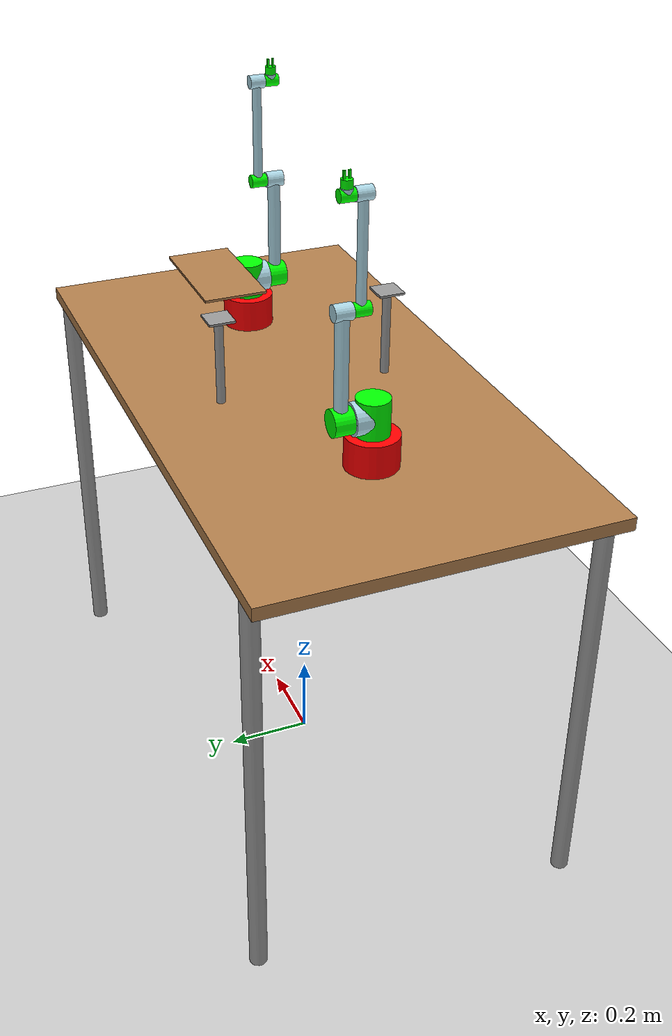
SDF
<?xml version="1.0" ?>
<sdf version="1.8">
  <world name="full_env">

    <!-- LIGHT -->

    <light type="directional" name="sun">
        <cast_shadows>true</cast_shadows>
        <pose>0 0 10 0 0 0</pose>
        <diffuse>0.8 0.8 0.8 1</diffuse>
        <specular>0.2 0.2 0.2 1</specular>
        <attenuation>
            <range>1000</range>
            <constant>0.9</constant>
            <linear>0.01</linear>
            <quadratic>0.001</quadratic>
        </attenuation>
        <direction>-0.5 0.1 -0.9</direction>
    </light>

                            <!--      MODELS      -->

                        <!--      Ground Plane      -->

    <!-- Ground Plane -->
    <model name="ground_plane">
      <static>true</static>
      <link name="link">
        <collision name="collision">
          <geometry>
            <plane>
              <normal>0 0 1</normal>
              <size>10 10</size>
            </plane>
          </geometry>
        </collision>
        <visual name="visual">
          <geometry>
            <plane>
              <normal>0 0 1</normal>
              <size>10 10</size>
            </plane>
          </geometry>

          <!-- COLOR!-->
          <material>
            <ambient>0.8 0.8 0.8 1</ambient>
            <diffuse>0.8 0.8 0.8 1</diffuse>
            <specular>0.5 0.5 0.5 1</specular>
          </material>
        </visual>
      </link>
    </model>

                                <!-- OBJECT MODEL -->

    <model name="wood_object">
        <link name="wood">
            <pose>0 0.2 1.3200 0 0 0</pose>
            <collision name="surface">
                <geometry>
                    <box>
                        <size>0.25 0.1333 0.0050</size>
                    </box>
                </geometry>
                <surface>
                    <friction>
                        <ode>
                            <mu>0.6</mu>
                            <mu2>0.6</mu2>
                        </ode>
                    </friction>
                </surface>
            </collision>
            <visual name="visual1">
                <geometry>
                    <box>
                        <size>0.25 0.1333 0.005</size>
                    </box>
                </geometry>
                <material>
                    <diffuse>1.0 1.0 1.0</diffuse>
                    <script>
                        <uri>file://media/materials/scripts/gazebo.material</uri>
                        <name>Gazebo/Wood</name>
                    </script>
                    <!-- PBR for Ignition, material scripts for gazebo classic-->
                    <pbr>
                        <metal>
                            <albedo_map>https://fuel.gazebosim.org/1.0/openrobotics/models/table/4/files/Table_Diffuse.jpg</albedo_map>
                        </metal>
                    </pbr>
                </material>
            </visual>
            <inertial>
                <mass>1.0</mass>
                <inertia>
                    <ixx>0.00000147616</ixx>
                    <ixy>0</ixy>
                    <ixz>0</ixz>
                    <iyy>0.00000671574</iyy>
                    <iyz>0</iyz>
                    <izz>0.00000521083</izz>
                </inertia>
            </inertial>
        </link>
    </model>

                                <!-- Table and Supports Model -->

    <model name="Table">
        <static>true</static>
        <link name="table_link">
          <collision name="surface">
              <pose>0 0 1.0 0 0 0</pose>
              <geometry>
                  <box>
                      <size>1.5 0.8 0.03</size>
                  </box>
              </geometry>
              <surface>
                  <friction>
                      <ode>
                          <mu>0.6</mu>
                          <mu2>0.6</mu2>
                      </ode>
                  </friction>
              </surface>
          </collision>
          <visual name="visual1">
              <pose>0 0 1.0 0 0 0</pose>
              <geometry>
                  <box>
                      <size>1.5 0.8 0.03</size>
                  </box>
              </geometry>
              <material>
                  <diffuse>1.0 1.0 1.0</diffuse>
                  <script>
                      <uri>file://media/materials/scripts/gazebo.material</uri>
                      <name>Gazebo/Wood</name>
                  </script>
                  <!-- PBR for Ignition, material scripts for gazebo classic-->
                  <pbr>
                      <metal>
                          <albedo_map>https://fuel.gazebosim.org/1.0/openrobotics/models/table/4/files/Table_Diffuse.jpg</albedo_map>
                      </metal>
                  </pbr>
              </material>
          </visual>
          <collision name="front_left_leg">
              <pose>0.68 0.38 0.5 0 0 0</pose>
              <geometry>
                  <cylinder>
                      <radius>0.02</radius>
                      <length>1.0</length>
                  </cylinder>
              </geometry>
          </collision>
          <visual name="front_left_leg">
              <pose>0.68 0.38 0.5 0 0 0</pose>
              <geometry>
                  <cylinder>
                      <radius>0.02</radius>
                      <length>1.0</length>
                  </cylinder>
              </geometry>
              <material>
                  <diffuse>0.5 0.5 0.5</diffuse>
                  <script>
                      <uri>file://media/materials/scripts/gazebo.material</uri>
                      <name>Gazebo/Grey</name>
                  </script>
              </material>
          </visual>
          <collision name="front_right_leg">
              <pose>0.68 -0.38 0.5 0 0 0</pose>
              <geometry>
                  <cylinder>
                      <radius>0.02</radius>
                      <length>1.0</length>
                  </cylinder>
              </geometry>
          </collision>
          <visual name="front_right_leg">
              <pose>0.68 -0.38 0.5 0 0 0</pose>
              <geometry>
                  <cylinder>
                      <radius>0.02</radius>
                      <length>1.0</length>
                  </cylinder>
              </geometry>
              <material>
                  <diffuse>0.5 0.5 0.5</diffuse>
                  <script>
                      <uri>file://media/materials/scripts/gazebo.material</uri>
                      <name>Gazebo/Grey</name>
                  </script>
              </material>
          </visual>
          <collision name="back_right_leg">
              <pose>-0.68 -0.38 0.5 0 0 0</pose>
              <geometry>
                  <cylinder>
                      <radius>0.02</radius>
                      <length>1.0</length>
                  </cylinder>
              </geometry>
          </collision>
          <visual name="back_right_leg">
              <pose>-0.68 -0.38 0.5 0 0 0</pose>
              <geometry>
                  <cylinder>
                      <radius>0.02</radius>
                      <length>1.0</length>
                  </cylinder>
              </geometry>
              <material>
                  <diffuse>0.5 0.5 0.5</diffuse>
                  <script>
                      <uri>file://media/materials/scripts/gazebo.material</uri>
                      <name>Gazebo/Grey</name>
                  </script>
              </material>
          </visual>
          <collision name="back_left_leg">
              <pose>-0.68 0.38 0.5 0 0 0</pose>
              <geometry>
                  <cylinder>
                      <radius>0.02</radius>
                      <length>1.0</length>
                  </cylinder>
              </geometry>
          </collision>
          <visual name="back_left_leg">
              <pose>-0.68 0.38 0.5 0 0 0</pose>
              <geometry>
                  <cylinder>
                      <radius>0.02</radius>
                      <length>1.0</length>
                  </cylinder>
              </geometry>
              <material>
                  <diffuse>0.5 0.5 0.5</diffuse>
                  <script>
                      <uri>file://media/materials/scripts/gazebo.material</uri>
                      <name>Gazebo/Grey</name>
                  </script>
              </material>
          </visual>
        </link>

                            <!-- SUPPORT LINKS -->

                            <!-- START SUPPORT -->

        <link name="body_support_start">
            <pose relative_to="table_link">0 0.2 1.1150 0 0 0</pose>

            <collision name="body_collision">
                <geometry>
                    <cylinder>
                        <radius>0.01</radius>
                        <length>0.2</length>
                    </cylinder>
                </geometry>
            </collision>
            <visual name="body_visual">
                <geometry>
                    <cylinder>
                        <radius>0.01</radius>
                        <length>0.2</length>
                    </cylinder>
                </geometry>
                <material>
                    <diffuse>0.5 0.5 0.5</diffuse>
                    <script>
                        <uri>file://media/materials/scripts/gazebo.material</uri>
                        <name>Gazebo/Grey</name>
                    </script>
                </material>
            </visual>
        </link>

        <link name="platform_support_start">
            <pose relative_to="body_support_start">0 0 0.1025 0 0 0</pose>

            <collision name="platform_collision">
                <geometry>
                    <box>
                        <size>0.06 0.06 0.005</size>
                    </box>
                </geometry>
            </collision>
            <visual name="platform_visual">
                <geometry>
                    <box>
                        <size>0.06 0.06 0.005</size>
                    </box>
                </geometry>
                <material>
                    <diffuse>0.5 0.5 0.5</diffuse>
                    <script>
                        <uri>file://media/materials/scripts/gazebo.material</uri>
                        <name>Gazebo/Grey</name>
                    </script>
                </material>
            </visual>
        </link>

                            <!-- GOAL SUPPORT -->

        <link name="body_support_goal">
            <pose relative_to="table_link">0 -0.2 1.115 0 0 0</pose>

            <collision name="body_collision">
                <geometry>
                    <cylinder>
                        <radius>0.01</radius>
                        <length>0.2</length>
                    </cylinder>
                </geometry>
            </collision>
            <visual name="body_visual">
                <geometry>
                    <cylinder>
                        <radius>0.01</radius>
                        <length>0.2</length>
                    </cylinder>
                </geometry>
                <material>
                    <diffuse>0.5 0.5 0.5</diffuse>
                    <script>
                        <uri>file://media/materials/scripts/gazebo.material</uri>
                        <name>Gazebo/Grey</name>
                    </script>
                </material>
            </visual>
        </link>

        <link name="platform_support_goal">
            <pose relative_to="body_support_goal">0 0 0.1025 0 0 0</pose>

            <collision name="platform_collision">
                <geometry>
                    <box>
                        <size>0.06 0.06 0.005</size>
                    </box>
                </geometry>
            </collision>
            <visual name="platform_visual">
                <geometry>
                    <box>
                        <size>0.06 0.06 0.005</size>
                    </box>
                </geometry>
                <material>
                    <diffuse>0.5 0.5 0.5</diffuse>
                    <script>
                        <uri>file://media/materials/scripts/gazebo.material</uri>
                        <name>Gazebo/Grey</name>
                    </script>
                </material>
            </visual>
        </link>

                                <!-- START: weld support to table  -->

        <joint name="support_table_start" type="fixed">
            <parent>table_link</parent>
            <child>body_support_start</child>
            <pose>0 0.2 1.115 0 0 0</pose>
        </joint>

                                <!-- START: weld platform to support body -->

        <joint name="platform_body_start" type="fixed">
            <parent>body_support_start</parent>
            <child>platform_support_start</child>
            <pose>0 0 0.1025 0 0 0</pose>
        </joint>

                                <!-- GOAL: weld support to table  -->

        <joint name="support_table_goal" type="fixed">
            <parent>table_link</parent>
            <child>body_support_goal</child>
            <pose>0 -0.2 1.115 0 0 0</pose>
        </joint>

                                <!-- GOAL: weld platform to support body -->

        <joint name="platform_body_goal" type="fixed">
            <parent>body_support_goal</parent>
            <child>platform_support_goal</child>
            <pose>0 0 0.1025 0 0 0</pose>
        </joint>

    </model>

                            <!-- ARM MODEL 1 -->

    <model name="arm_1">

      <plugin
        filename="libignition-gazebo-joint-controller-system.so"
        name="ignition::gazebo::systems::JointController">
        <joint_name>joint0_1</joint_name>
        <topic>/arm/joint0_1/pos_eff</topic>
      </plugin>

      <plugin
        filename="libignition-gazebo-joint-controller-system.so"
        name="ignition::gazebo::systems::JointController">
        <joint_name>joint1_1</joint_name>
        <topic>/arm/joint1_1/pos_eff</topic>
      </plugin>

      <plugin
        filename="libignition-gazebo-joint-controller-system.so"
        name="ignition::gazebo::systems::JointController">
        <joint_name>joint2_1</joint_name>
        <topic>/arm/joint2_1/pos_eff</topic>
      </plugin>

      <plugin
        filename="libignition-gazebo-joint-controller-system.so"
        name="ignition::gazebo::systems::JointController">
        <joint_name>joint3_1</joint_name>
        <topic>/arm/joint3_1/pos_eff</topic>
      </plugin>

      <plugin
        filename="libignition-gazebo-joint-controller-system.so"
        name="ignition::gazebo::systems::JointController">
        <joint_name>joint4_1</joint_name>
        <topic>/arm/joint4_1/pos_eff</topic>
      </plugin>

      <plugin
        filename="libignition-gazebo-joint-controller-system.so"
        name="ignition::gazebo::systems::JointController">
        <joint_name>right_finger_1_joint</joint_name>
        <topic>/arm/right_finger_1_joint/pos_eff</topic>
      </plugin>

      <plugin
        filename="libignition-gazebo-joint-controller-system.so"
        name="ignition::gazebo::systems::JointController">
        <joint_name>left_finger_1_joint</joint_name>
        <topic>/arm/left_finger_1_joint/pos_eff</topic>
      </plugin>

      <plugin
        filename="libignition-gazebo-joint-state-publisher-system.so"
        name="ignition::gazebo::systems::JointStatePublisher">
      </plugin>

                                <!-- Arm Links -->

                                <!-- BASE LINK -->

      <!-- Base Link -->
      <link name="base_link_1">

        <pose>-0.375 0 1.0525 0 0 1.57079632679</pose>

        <collision name="base_collision_1">
          <geometry>
            <cylinder>
              <radius>0.06</radius> <!-- 12 cm diameter -->
              <length>0.075</length> <!-- 7.5 cm length -->
            </cylinder>
          </geometry>
        </collision>

        <visual name="base_visual_1">
          <geometry>
            <cylinder>
              <radius>0.06</radius>
              <length>0.075</length>
            </cylinder>
          </geometry>

          <!-- COLOR!-->
          <material>
            <ambient>1.0 0.0 0.0 1</ambient>
            <diffuse>1.0 0.0 0.0 1</diffuse>
            <specular>1.0 0.0 0.0 1</specular>
          </material>
        </visual>

        <inertial>
          <mass>100</mass>
          <inertia>
            <ixx>0.100</ixx>
            <ixy>0</ixy>
            <ixz>0</ixz>
            <iyy>0.100</iyy>
            <iyz>0</iyz>
            <izz>0.08</izz>
          </inertia>
        </inertial>
      </link>

                            <!-- Motor 0 link -->

      <link name="motor0_1">

        <pose relative_to="base_link_1">0 0 0.07875 0 0 0</pose>

        <!-- COLLISION -->
        <collision name="motor0_1_collision">
            <geometry>
                <cylinder>
                    <radius>0.0375</radius>
                    <length>0.0825</length>
                </cylinder>
            </geometry>
        </collision>

        <!-- VISUAL -->
        <visual name="motor0_1_visual">
            <geometry>
                <cylinder>
                    <radius>0.0375</radius> <!-- 6.5 cm diameter -->
                    <length>0.0825</length> <!-- 7.15 cm height -->
                </cylinder>
            </geometry>
            <material>
                <ambient>0.0 1.0 0.0 1</ambient> <!-- Green -->
                <diffuse>0.0 1.0 0.0 1</diffuse> <!-- Green -->
                <specular>1.0 1.0 1.0 1</specular>
            </material>
        </visual>
        <inertial>
            <mass>10</mass>
            <inertia>
                <ixx>0.0001709375</ixx>
                <ixy>0</ixy>
                <ixz>0</ixz>
                <iyy>0.0001709375</iyy>
                <iyz>0</iyz>
                <izz>0.0003125</izz>
              </inertia>
        </inertial>
      </link>

                            <!-- Motor 1 link -->

      <link name="motor1_1">

        <pose relative_to="segment0_1">0 0 0.04125 0 0 0</pose>

        <!-- COLLISION -->
        <collision name="motor1_1_collision">
            <geometry>
                <cylinder>
                    <radius>0.030</radius>
                    <length>0.045</length>
                </cylinder>
            </geometry>
        </collision>

        <!-- VISUAL -->
        <visual name="motor1_1_visual">
            <geometry>
                <cylinder>
                    <radius>0.030</radius> <!-- 4 cm diameter -->
                    <length>0.045</length> <!-- 3 cm length -->
                </cylinder>
            </geometry>
            <material>
                <ambient>0.0 1.0 0.0 1</ambient> <!-- Green -->
                <diffuse>0.0 1.0 0.0 1</diffuse> <!-- Green -->
                <specular>1.0 1.0 1.0 1</specular>
            </material>
        </visual>
        <inertial>
            <mass>1</mass>
            <inertia>
                <ixx>0.0002291666667</ixx>
                <ixy>0</ixy>
                <ixz>0</ixz>
                <iyy>0.0002291666667</iyy>
                <iyz>0</iyz>
                <izz>0.0001</izz>
            </inertia>
        </inertial>
      </link>

                              <!-- Motor 2 Link-->

      <link name="motor2_1">

        <pose relative_to="segment2_1">0 0 0.0390 0 0 0</pose>

        <!-- COLLISION -->
        <collision name="motor2_1_collision">
            <geometry>
                <cylinder>
                    <radius>0.015</radius>
                    <length>0.0375</length>
                </cylinder>
            </geometry>
        </collision>

        <!-- VISUAL -->
        <visual name="motor2_1_visual">
            <geometry>
                <cylinder>
                    <radius>0.015</radius> <!-- 2 cm diameter -->
                    <length>0.0375</length> <!-- 2.5 cm height -->
                </cylinder>
            </geometry>
            <material>
                <ambient>0.0 1.0 0.0 1</ambient> <!-- Green -->
                <diffuse>0.0 1.0 0.0 1</diffuse> <!-- Green -->
                <specular>1.0 1.0 1.0 1</specular>
            </material>
        </visual>
        <inertial>
          <mass>0.1</mass>
          <inertia>
              <ixx>0.00013125</ixx>
              <ixy>0</ixy>
              <ixz>0</ixz>
              <iyy>0.00013125</iyy>
              <iyz>0</iyz>
              <izz>0.0000025</izz>
          </inertia>
        </inertial>
      </link>

                              <!-- Motor 3 Link-->

      <link name="motor3_1">

        <pose relative_to="segment4_1">0 0 0.034 0 0 0</pose>

        <!-- COLLISION -->
        <collision name="motor3_1_collision">
            <geometry>
                <cylinder>
                    <radius>0.0135</radius>
                    <length>0.033</length>
                </cylinder>
            </geometry>
        </collision>

        <!-- VISUAL -->
        <visual name="motor3_1_visual">
            <geometry>
                <cylinder>
                    <radius>0.0135</radius> <!-- 1.8 cm diameter -->
                    <length>0.033</length> <!-- 2.5 cm height -->
                </cylinder>
            </geometry>
            <material>
                <ambient>0.0 1.0 0.0 1</ambient> <!-- Green -->
                <diffuse>0.0 1.0 0.0 1</diffuse> <!-- Green -->
                <specular>1.0 1.0 1.0 1</specular>
            </material>
        </visual>
        <inertial>
          <mass>0.1</mass>
          <inertia>
              <ixx>0.00013125</ixx>
              <ixy>0</ixy>
              <ixz>0</ixz>
              <iyy>0.00013125</iyy>
              <iyz>0</iyz>
              <izz>0.0000025</izz>
          </inertia>
        </inertial>
      </link>

                            <!-- Motor 4 Link-->

      <link name="motor4_1">

        <pose relative_to="segment5_1">0 0 0.015 0 0 0</pose>

        <!-- COLLISION -->
        <collision name="motor4_1_collision">
            <geometry>
                <cylinder>
                    <radius>0.012</radius>
                    <length>0.0195</length>
                </cylinder>
            </geometry>
        </collision>

        <!-- VISUAL -->
        <visual name="motor4_1_visual">
            <geometry>
                <cylinder>
                    <radius>0.012</radius> <!-- 1.6 cm diameter -->
                    <length>0.0195</length> <!-- 1.3 cm height -->
                </cylinder>
            </geometry>
            <material>
                <ambient>0.0 1.0 0.0 1</ambient> <!-- Green -->
                <diffuse>0.0 1.0 0.0 1</diffuse> <!-- Green -->
                <specular>1.0 1.0 1.0 1</specular>
            </material>
        </visual>
        <inertial>
          <mass>0.1</mass>
          <inertia>
              <ixx>0.00013125</ixx>
              <ixy>0</ixy>
              <ixz>0</ixz>
              <iyy>0.00013125</iyy>
              <iyz>0</iyz>
              <izz>0.0000025</izz>
          </inertia>
        </inertial>
      </link>

                    <!-- CUSTOM SIMPLE GRIPPER -->

                      <!-- right finger Link -->

      <link name="right_finger_1">

        <pose relative_to="segment6_1">0.005625 0 0.00975 0 0 0</pose> <!-- Adjusted Z to account for half the height of the cuboid -->

        <!-- COLLISION -->
        <collision name="right_finger_1_collision">
            <geometry>
                <box>
                    <size>0.0045 0.0045 0.0195</size> <!-- 4 times taller than wide -->
                </box>
            </geometry>
        </collision>

        <!-- VISUAL -->
        <visual name="right_finger_1_visual">
            <geometry>
                <box>
                    <size>0.0045 0.0045 0.0195</size>
                </box>
            </geometry>
            <material>
                <ambient>0.0 1.0 0.0 1</ambient> <!-- Green -->
                <diffuse>0.0 1.0 0.0 1</diffuse> <!-- Green -->
                <specular>1.0 1.0 1.0 1</specular>
            </material>
        </visual>

        <inertial>
          <mass>0.1</mass>
          <!-- The inertia tensor values would need to be recalculated for the box shape. The values below are placeholders. -->
          <inertia>
              <ixx>0.00013125</ixx>
              <ixy>0</ixy>
              <ixz>0</ixz>
              <iyy>0.00013125</iyy>
              <iyz>0</iyz>
              <izz>0.0000025</izz>
          </inertia>
        </inertial>
      </link>

                      <!-- left finger Link -->

      <link name="left_finger_1">

        <pose relative_to="segment6_1">-0.005625 0 0.00975 0 0 0</pose> <!-- Adjusted Z to account for half the height of the cuboid -->

        <!-- COLLISION -->
        <collision name="left_finger_1_collision">
            <geometry>
                <box>
                  <size>0.0045 0.0045 0.0195</size> <!-- 4 times taller than wide -->
                </box>
            </geometry>
        </collision>

        <!-- VISUAL -->
        <visual name="left_finger_1_visual">
            <geometry>
                <box>
                  <size>0.0045 0.0045 0.0195</size>
                </box>
            </geometry>
            <material>
                <ambient>0.0 1.0 0.0 1</ambient> <!-- Green -->
                <diffuse>0.0 1.0 0.0 1</diffuse> <!-- Green -->
                <specular>1.0 1.0 1.0 1</specular>
            </material>
        </visual>

        <inertial>
          <mass>0.1</mass>
          <!-- The inertia tensor values would need to be recalculated for the box shape. The values below are placeholders. -->
          <inertia>
              <ixx>0.00013125</ixx>
              <ixy>0</ixy>
              <ixz>0</ixz>
              <iyy>0.00013125</iyy>
              <iyz>0</iyz>
              <izz>0.0000025</izz>
          </inertia>
        </inertial>
      </link>

                          <!-- Segment 0 -->

      <link name="segment0_1">

        <pose relative_to="motor0_1">0.03 0 0 0 1.57079632679 0</pose>

        <!-- COLLISION -->
        <collision name="segment0_1_collision">
            <geometry>
                <cylinder>
                    <radius>0.0360</radius>
                    <length>0.0375</length>
                </cylinder>
            </geometry>
        </collision>

        <!-- VISUAL -->
        <visual name="segment0_1_visual">
            <geometry>
                <cylinder>
                    <radius>0.0360</radius> <!-- 7.2cm diameter -->
                    <length>0.0375</length> <!-- 3.75 cm length -->
                </cylinder>
            </geometry>
            <material>
                <ambient>0.678 0.847 0.902 1</ambient> <!-- Light Blue -->
                <diffuse>0.678 0.847 0.902 1</diffuse>
                <specular>1.0 1.0 1.0 1</specular>
            </material>
        </visual>
        <inertial>
          <mass>0.1</mass>
          <inertia>
              <ixx>0.00013125</ixx>
              <ixy>0</ixy>
              <ixz>0</ixz>
              <iyy>0.00013125</iyy>
              <iyz>0</iyz>
              <izz>0.0000025</izz>
          </inertia>
        </inertial>
      </link>

                            <!-- first segment-->

      <link name="segment1_1">

        <pose relative_to="motor1_1">-0.1275 0 0 0 -1.57079632679 0</pose>

        <!-- COLLISION -->
        <collision name="segment1_1_collision">
            <geometry>
                <cylinder>
                    <radius>0.015</radius>
                    <length>0.225</length>
                </cylinder>
            </geometry>
        </collision>

        <!-- VISUAL -->
        <visual name="segment1_1_visual">
            <geometry>
                <cylinder>
                    <radius>0.015</radius> <!-- 3 cm diameter -->
                    <length>0.225</length> <!-- 22.5 cm height -->
                </cylinder>
            </geometry>
            <material>
                <ambient>0.678 0.847 0.902 1</ambient> <!-- Light Blue -->
                <diffuse>0.678 0.847 0.902 1</diffuse>
                <specular>1.0 1.0 1.0 1</specular>
            </material>
        </visual>
        <inertial>
          <mass>0.1</mass>
          <inertia>
              <ixx>0.00013125</ixx>
              <ixy>0</ixy>
              <ixz>0</ixz>
              <iyy>0.00013125</iyy>
              <iyz>0</iyz>
              <izz>0.0000025</izz>
          </inertia>
        </inertial>
      </link>

                                  <!-- second segment-->

      <link name="segment2_1">

        <pose relative_to="segment1_1">0 0 0.1125 0 -1.57079632679 0</pose>

        <!-- COLLISION -->
        <collision name="segment2_1_collision">
            <geometry>
                <cylinder>
                    <radius>0.0180</radius>
                    <length>0.0405</length>
                </cylinder>
            </geometry>
        </collision>

        <!-- VISUAL -->
        <visual name="segment2_1_visual">
            <geometry>
                <cylinder>
                    <radius>0.0180</radius> <!-- 2.4 cm diameter -->
                    <length>0.0405</length> <!-- 3 cm height -->
                </cylinder>
            </geometry>
            <material>
                <ambient>0.678 0.847 0.902 1</ambient> <!-- Light Blue -->
                <diffuse>0.678 0.847 0.902 1</diffuse>
                <specular>1.0 1.0 1.0 1</specular>
            </material>
        </visual>
        <inertial>
          <mass>0.1</mass>
          <inertia>
              <ixx>0.00013125</ixx>
              <ixy>0</ixy>
              <ixz>0</ixz>
              <iyy>0.00013125</iyy>
              <iyz>0</iyz>
              <izz>0.0000025</izz>
          </inertia>
        </inertial>
      </link>

                            <!-- third segment-->

      <link name="segment3_1">

        <pose relative_to="motor2_1">0.12 0 0 0 -1.57079632679 0</pose>

        <!-- COLLISION -->
        <collision name="segment3_1_collision">
            <geometry>
                <cylinder>
                    <radius>0.0105</radius>
                    <length>0.225</length>
                </cylinder>
            </geometry>
        </collision>

        <!-- VISUAL -->
        <visual name="segment3_1_visual">
            <geometry>
                <cylinder>
                    <radius>0.0105</radius> <!-- 2 cm diameter -->
                    <length>0.225</length> <!-- 15 cm height -->
                </cylinder>
            </geometry>
            <material>
                <ambient>0.678 0.847 0.902 1</ambient> <!-- Light Blue -->
                <diffuse>0.678 0.847 0.902 1</diffuse>
                <specular>1.0 1.0 1.0 1</specular>
            </material>
        </visual>
        <inertial>
          <mass>0.1</mass>
          <inertia>
              <ixx>0.00013125</ixx>
              <ixy>0</ixy>
              <ixz>0</ixz>
              <iyy>0.00013125</iyy>
              <iyz>0</iyz>
              <izz>0.0000025</izz>
          </inertia>
        </inertial>
      </link>

                            <!-- fourth segment-->

      <link name="segment4_1">

        <pose relative_to="segment3_1">0 0 -0.1125 0 -1.57079632679 0</pose>

        <!-- COLLISION -->
        <collision name="segment4_1_collision">
            <geometry>
                <cylinder>
                    <radius>0.0150</radius>
                    <length>0.0350</length>
                </cylinder>
            </geometry>
        </collision>

        <!-- VISUAL -->
        <visual name="segment4_1_visual">
            <geometry>
                <cylinder>
                    <radius>0.0150</radius> <!-- 2.4 cm diameter -->
                    <length>0.0350</length> <!-- 3 cm height -->
                </cylinder>
            </geometry>
            <material>
                <ambient>0.678 0.847 0.902 1</ambient> <!-- Light Blue -->
                <diffuse>0.678 0.847 0.902 1</diffuse>
                <specular>1.0 1.0 1.0 1</specular>
            </material>
        </visual>
        <inertial>
          <mass>0.1</mass>
          <inertia>
              <ixx>0.00013125</ixx>
              <ixy>0</ixy>
              <ixz>0</ixz>
              <iyy>0.00013125</iyy>
              <iyz>0</iyz>
              <izz>0.0000025</izz>
          </inertia>
        </inertial>
      </link>

                            <!-- fifth segment-->

      <link name="segment5_1">

        <pose relative_to="motor3_1">-0.00675 0 0 0 -1.57079632679 0</pose>

        <!-- COLLISION -->
        <collision name="segment5_1_collision">
            <geometry>
                <cylinder>
                    <radius>0.01275</radius>
                    <length>0.015</length>
                </cylinder>
            </geometry>
        </collision>

        <!-- VISUAL -->
        <visual name="segment5_1_visual">
            <geometry>
                <cylinder>
                    <radius>0.01275</radius> <!-- 1.7 cm diameter -->
                    <length>0.015</length> <!-- 0.5 cm height -->
                </cylinder>
            </geometry>
            <material>
                <ambient>0.678 0.847 0.902 1</ambient> <!-- Light Blue -->
                <diffuse>0.678 0.847 0.902 1</diffuse>
                <specular>1.0 1.0 1.0 1</specular>
            </material>
        </visual>
        <inertial>
          <mass>0.1</mass>
          <inertia>
              <ixx>0.00013125</ixx>
              <ixy>0</ixy>
              <ixz>0</ixz>
              <iyy>0.00013125</iyy>
              <iyz>0</iyz>
              <izz>0.0000025</izz>
          </inertia>
        </inertial>
      </link>

                            <!-- sixth segment-->

      <link name="segment6_1">

        <pose relative_to="motor4_1">0 0 0.0065 0 0 0</pose>

        <!-- COLLISION -->
        <collision name="segment6_1_collision">
            <geometry>
                <cylinder>
                    <radius>0.0075</radius>
                    <length>0.003</length>
                </cylinder>
            </geometry>
        </collision>

        <!-- VISUAL -->
        <visual name="segment6_1_visual">
            <geometry>
                <cylinder>
                    <radius>0.0075</radius> <!-- 1.6 cm diameter -->
                    <length>0.003</length> <!-- 0.5 cm height -->
                </cylinder>
            </geometry>
            <material>
                <ambient>0.678 0.847 0.902 1</ambient> <!-- Light Blue -->
                <diffuse>0.678 0.847 0.902 1</diffuse>
                <specular>1.0 1.0 1.0 1</specular>
            </material>
        </visual>
        <inertial>
          <mass>0.1</mass>
          <inertia>
              <ixx>0.00013125</ixx>
              <ixy>0</ixy>
              <ixz>0</ixz>
              <iyy>0.00013125</iyy>
              <iyz>0</iyz>
              <izz>0.0000025</izz>
          </inertia>
        </inertial>
      </link>

                        <!--      JOINTS      -->

                            <!-- revolute joint 0  -->

      <joint name="joint0_1" type="revolute">
         <parent>base_link_1</parent>
          <child>motor0_1</child>
          <axis>
              <dynamics>
                <damping>0.000000</damping>
                <friction>0.000000</friction>
              </dynamics>
              <xyz>0 0 1</xyz> <!-- Z-axis rotation -->
              <limit>
                <lower>-3.141592</lower> <!-- -180 degrees -->
                <upper>3.141592</upper>  <!-- 180 degrees -->
                <effort>1e6</effort>
              </limit>
          </axis>
          <pose>0 0 0.07875 0 0 0</pose>
      </joint>

                            <!-- revolute joint 1  -->

      <joint name="joint1_1" type="revolute">
        <parent>segment0_1</parent>
         <child>motor1_1</child>
         <axis>
             <dynamics>
               <friction>0.000000</friction>
               <damping>0.000000</damping>
             </dynamics>
             <xyz>0 0 1</xyz>
             <limit>
                <lower>-1.300000</lower>
                <upper>1.300000</upper>
                <effort>1e6</effort>
             </limit>
         </axis>
         <pose>0 0 0.04125 0 0 0</pose>
      </joint>

                            <!-- revolute joint 2  -->

      <joint name="joint2_1" type="revolute">
        <parent>segment2_1</parent>
         <child>motor2_1</child>
         <axis>
             <dynamics>
               <friction>0.000000</friction>
               <damping>0.000000</damping>
             </dynamics>
             <xyz>0 0 1</xyz>
             <limit>
                <lower>-1.300000</lower>
                <upper>1.300000</upper>
                <effort>1e6</effort>
             </limit>
         </axis>
         <pose>0 0 0.0390 0 0 0</pose>
      </joint>

                            <!-- revolute joint 3  -->

      <joint name="joint3_1" type="revolute">
        <parent>segment4_1</parent>
         <child>motor3_1</child>
         <axis>
             <dynamics>
               <friction>0.000000</friction>
               <damping>0.000000</damping>
             </dynamics>
             <xyz>0 0 1</xyz>
             <limit>
                <lower>-1.300000</lower>
                <upper>1.300000</upper>
                <effort>1e6</effort>
             </limit>
         </axis>
         <pose>0 0 0.034 0 0 0</pose>
      </joint>

                            <!-- revolute joint 4  -->

      <joint name="joint4_1" type="revolute">
        <parent>segment5_1</parent>
         <child>motor4_1</child>
         <axis>
             <dynamics>
               <friction>0.000000</friction>
               <damping>0.000000</damping>
             </dynamics>
             <xyz>0 0 1</xyz>
             <limit>
                <lower>-1.300000</lower>
                <upper>1.300000</upper>
                <effort>1e6</effort>
             </limit>
         </axis>
         <pose>0 0 0.015 0 0 0</pose>
      </joint>

                            <!-- right finger prismatic joint  -->

      <joint name="right_finger_1_joint" type="prismatic">

         <parent>segment6_1</parent>
         <child>right_finger_1</child>

         <axis>
             <dynamics>
               <friction>0.000000</friction>
               <damping>0.000000</damping>
             </dynamics>
             <xyz>1 0 0</xyz>
             <limit>
                <lower>0</lower>
                <upper>0.00375</upper>
                <effort>1e6</effort>
             </limit>
         </axis>
         <pose>0.005625 0 0.00975 0 0 3.14159265359</pose>
      </joint>

                            <!-- left finger prismatic joint  -->

      <joint name="left_finger_1_joint" type="prismatic">

         <parent>segment6_1</parent>
         <child>left_finger_1</child>

         <axis>
             <dynamics>
               <friction>0.000000</friction>
               <damping>0.000000</damping>
             </dynamics>
             <xyz>1 0 0</xyz>
             <limit>
                <lower>0</lower>
                <upper>0.00375</upper>
                <effort>1e6</effort>
             </limit>
         </axis>
         <pose>-0.005625 0 0.00975 0 0 0</pose>
      </joint>

                        <!--      FIXED JOINTS      -->

                            <!-- fixed joint 0  -->

      <joint name="fixed0_1" type="fixed">
        <parent>motor0_1</parent>
        <child>segment0_1</child>
        <pose>0.03 0 0 0 1.57079632679 0</pose>
      </joint>

                            <!-- fixed joint 1  -->

      <joint name="fixed1_1" type="fixed">
        <parent>motor1_1</parent>
        <child>segment1_1</child>
        <pose>-0.1275 0 0 0 -1.57079632679 0</pose>
      </joint>

                            <!-- fixed joint 2  -->

      <joint name="fixed2_1" type="fixed">
        <parent>segment1_1</parent>
        <child>segment2_1</child>
        <pose>0 0 0.1125 0 -1.57079632679 0</pose>
      </joint>

                            <!-- fixed joint 3  -->

      <joint name="fixed3_1" type="fixed">
        <parent>motor2_1</parent>
        <child>segment3_1</child>
        <pose>0.12 0 0 0 -1.57079632679 0</pose>
      </joint>

                            <!-- fixed joint 4  -->

      <joint name="fixed4_1" type="fixed">
        <parent>segment3_1</parent>
        <child>segment4_1</child>
        <pose>0 0 -0.1125 0 -1.57079632679 0</pose>
      </joint>

                            <!-- fixed joint 5  -->

      <joint name="fixed5_1" type="fixed">
        <parent>motor3_1</parent>
        <child>segment5_1</child>
        <pose>-0.00675 0 0 0 -1.57079632679 0</pose>
      </joint>

                            <!-- fixed joint 6 -->

      <joint name="fixed6_1" type="fixed">
        <parent>motor4_1</parent>
        <child>segment6_1</child>
        <pose>0 0 0.0065 0 0 0</pose>
      </joint>

    </model>

                                <!-- ARM MODEL 2 -->

    <model name="arm_2">

      <plugin
        filename="libignition-gazebo-joint-controller-system.so"
        name="ignition::gazebo::systems::JointController">
        <joint_name>joint0_2</joint_name>
        <topic>/arm/joint0_2/pos_eff</topic>
      </plugin>

      <plugin
        filename="libignition-gazebo-joint-controller-system.so"
        name="ignition::gazebo::systems::JointController">
        <joint_name>joint1_2</joint_name>
        <topic>/arm/joint1_2/pos_eff</topic>
      </plugin>

      <plugin
        filename="libignition-gazebo-joint-controller-system.so"
        name="ignition::gazebo::systems::JointController">
        <joint_name>joint2_2</joint_name>
        <topic>/arm/joint2_2/pos_eff</topic>
      </plugin>

      <plugin
        filename="libignition-gazebo-joint-controller-system.so"
        name="ignition::gazebo::systems::JointController">
        <joint_name>joint3_2</joint_name>
        <topic>/arm/joint3_2/pos_eff</topic>
      </plugin>

      <plugin
        filename="libignition-gazebo-joint-controller-system.so"
        name="ignition::gazebo::systems::JointController">
        <joint_name>joint4_2</joint_name>
        <topic>/arm/joint4_2/pos_eff</topic>
      </plugin>

      <plugin
        filename="libignition-gazebo-joint-controller-system.so"
        name="ignition::gazebo::systems::JointController">
        <joint_name>right_finger_2_joint</joint_name>
        <topic>/arm/right_finger_2_joint/pos_eff</topic>
      </plugin>

      <plugin
        filename="libignition-gazebo-joint-controller-system.so"
        name="ignition::gazebo::systems::JointController">
        <joint_name>left_finger_2_joint</joint_name>
        <topic>/arm/left_finger_2_joint/pos_eff</topic>
      </plugin>

      <plugin
        filename="libignition-gazebo-joint-state-publisher-system.so"
        name="ignition::gazebo::systems::JointStatePublisher">
      </plugin>

                                <!-- Arm Links -->

                                <!-- BASE LINK -->

      <!-- Base Link -->
      <link name="base_link_2">

        <pose>0.375 0 1.0525 0 0 -1.57079632679</pose>

        <collision name="base_collision_2">
          <geometry>
            <cylinder>
              <radius>0.06</radius> <!-- 12 cm diameter -->
              <length>0.075</length> <!-- 7.5 cm length -->
            </cylinder>
          </geometry>
        </collision>

        <visual name="base_visual_2">
          <geometry>
            <cylinder>
              <radius>0.06</radius>
              <length>0.075</length>
            </cylinder>
          </geometry>

          <!-- COLOR!-->
          <material>
            <ambient>1.0 0.0 0.0 1</ambient>
            <diffuse>1.0 0.0 0.0 1</diffuse>
            <specular>1.0 0.0 0.0 1</specular>
          </material>
        </visual>

        <inertial>
          <mass>100</mass>
          <inertia>
            <ixx>0.100</ixx>
            <ixy>0</ixy>
            <ixz>0</ixz>
            <iyy>0.100</iyy>
            <iyz>0</iyz>
            <izz>0.08</izz>
          </inertia>
        </inertial>
      </link>

                            <!-- Motor 0 link -->

      <link name="motor0_2">

        <pose relative_to="base_link_2">0 0 0.07875 0 0 0</pose>

        <!-- COLLISION -->
        <collision name="motor0_2_collision">
            <geometry>
                <cylinder>
                    <radius>0.0375</radius>
                    <length>0.0825</length>
                </cylinder>
            </geometry>
        </collision>

        <!-- VISUAL -->
        <visual name="motor0_2_visual">
            <geometry>
                <cylinder>
                    <radius>0.0375</radius> <!-- 6.5 cm diameter -->
                    <length>0.0825</length> <!-- 7.15 cm height -->
                </cylinder>
            </geometry>
            <material>
                <ambient>0.0 1.0 0.0 1</ambient> <!-- Green -->
                <diffuse>0.0 1.0 0.0 1</diffuse> <!-- Green -->
                <specular>1.0 1.0 1.0 1</specular>
            </material>
        </visual>
        <inertial>
            <mass>10</mass>
            <inertia>
                <ixx>0.0001709375</ixx>
                <ixy>0</ixy>
                <ixz>0</ixz>
                <iyy>0.0001709375</iyy>
                <iyz>0</iyz>
                <izz>0.0003125</izz>
              </inertia>
        </inertial>
      </link>

                            <!-- Motor 1 link -->

      <link name="motor1_2">

        <pose relative_to="segment0_2">0 0 0.04125 0 0 0</pose>

        <!-- COLLISION -->
        <collision name="motor1_2_collision">
            <geometry>
                <cylinder>
                    <radius>0.030</radius>
                    <length>0.045</length>
                </cylinder>
            </geometry>
        </collision>

        <!-- VISUAL -->
        <visual name="motor1_2_visual">
            <geometry>
                <cylinder>
                    <radius>0.030</radius> <!-- 4 cm diameter -->
                    <length>0.045</length> <!-- 3 cm length -->
                </cylinder>
            </geometry>
            <material>
                <ambient>0.0 1.0 0.0 1</ambient> <!-- Green -->
                <diffuse>0.0 1.0 0.0 1</diffuse> <!-- Green -->
                <specular>1.0 1.0 1.0 1</specular>
            </material>
        </visual>
        <inertial>
            <mass>1</mass>
            <inertia>
                <ixx>0.0002291666667</ixx>
                <ixy>0</ixy>
                <ixz>0</ixz>
                <iyy>0.0002291666667</iyy>
                <iyz>0</iyz>
                <izz>0.0001</izz>
            </inertia>
        </inertial>
      </link>

                              <!-- Motor 2 Link-->

      <link name="motor2_2">

        <pose relative_to="segment2_2">0 0 0.0390 0 0 0</pose>

        <!-- COLLISION -->
        <collision name="motor2_2_collision">
            <geometry>
                <cylinder>
                    <radius>0.015</radius>
                    <length>0.0375</length>
                </cylinder>
            </geometry>
        </collision>

        <!-- VISUAL -->
        <visual name="motor2_2_visual">
            <geometry>
                <cylinder>
                    <radius>0.015</radius> <!-- 2 cm diameter -->
                    <length>0.0375</length> <!-- 2.5 cm height -->
                </cylinder>
            </geometry>
            <material>
                <ambient>0.0 1.0 0.0 1</ambient> <!-- Green -->
                <diffuse>0.0 1.0 0.0 1</diffuse> <!-- Green -->
                <specular>1.0 1.0 1.0 1</specular>
            </material>
        </visual>
        <inertial>
          <mass>0.1</mass>
          <inertia>
              <ixx>0.00013125</ixx>
              <ixy>0</ixy>
              <ixz>0</ixz>
              <iyy>0.00013125</iyy>
              <iyz>0</iyz>
              <izz>0.0000025</izz>
          </inertia>
        </inertial>
      </link>

                              <!-- Motor 3 Link-->

      <link name="motor3_2">

        <pose relative_to="segment4_2">0 0 0.034 0 0 0</pose>

        <!-- COLLISION -->
        <collision name="motor3_2_collision">
            <geometry>
                <cylinder>
                    <radius>0.0135</radius>
                    <length>0.033</length>
                </cylinder>
            </geometry>
        </collision>

        <!-- VISUAL -->
        <visual name="motor3_2_visual">
            <geometry>
                <cylinder>
                    <radius>0.0135</radius> <!-- 1.8 cm diameter -->
                    <length>0.033</length> <!-- 2.5 cm height -->
                </cylinder>
            </geometry>
            <material>
                <ambient>0.0 1.0 0.0 1</ambient> <!-- Green -->
                <diffuse>0.0 1.0 0.0 1</diffuse> <!-- Green -->
                <specular>1.0 1.0 1.0 1</specular>
            </material>
        </visual>
        <inertial>
          <mass>0.1</mass>
          <inertia>
              <ixx>0.00013125</ixx>
              <ixy>0</ixy>
              <ixz>0</ixz>
              <iyy>0.00013125</iyy>
              <iyz>0</iyz>
              <izz>0.0000025</izz>
          </inertia>
        </inertial>
      </link>

                            <!-- Motor 4 Link-->

      <link name="motor4_2">

        <pose relative_to="segment5_2">0 0 0.015 0 0 0</pose>

        <!-- COLLISION -->
        <collision name="motor4_2_collision">
            <geometry>
                <cylinder>
                    <radius>0.012</radius>
                    <length>0.0195</length>
                </cylinder>
            </geometry>
        </collision>

        <!-- VISUAL -->
        <visual name="motor4_2_visual">
            <geometry>
                <cylinder>
                    <radius>0.012</radius> <!-- 1.6 cm diameter -->
                    <length>0.0195</length> <!-- 1.3 cm height -->
                </cylinder>
            </geometry>
            <material>
                <ambient>0.0 1.0 0.0 1</ambient> <!-- Green -->
                <diffuse>0.0 1.0 0.0 1</diffuse> <!-- Green -->
                <specular>1.0 1.0 1.0 1</specular>
            </material>
        </visual>
        <inertial>
          <mass>0.1</mass>
          <inertia>
              <ixx>0.00013125</ixx>
              <ixy>0</ixy>
              <ixz>0</ixz>
              <iyy>0.00013125</iyy>
              <iyz>0</iyz>
              <izz>0.0000025</izz>
          </inertia>
        </inertial>
      </link>

                    <!-- CUSTOM SIMPLE GRIPPER -->

                      <!-- right finger Link -->

      <link name="right_finger_2">

        <pose relative_to="segment6_2">0.005625 0 0.00975 0 0 0</pose> <!-- Adjusted Z to account for half the height of the cuboid -->

        <!-- COLLISION -->
        <collision name="right_finger_2_collision">
            <geometry>
                <box>
                    <size>0.0045 0.0045 0.0195</size> <!-- 4 times taller than wide -->
                </box>
            </geometry>
        </collision>

        <!-- VISUAL -->
        <visual name="right_finger_2_visual">
            <geometry>
                <box>
                    <size>0.0045 0.0045 0.0195</size>
                </box>
            </geometry>
            <material>
                <ambient>0.0 1.0 0.0 1</ambient> <!-- Green -->
                <diffuse>0.0 1.0 0.0 1</diffuse> <!-- Green -->
                <specular>1.0 1.0 1.0 1</specular>
            </material>
        </visual>

        <inertial>
          <mass>0.1</mass>
          <!-- The inertia tensor values would need to be recalculated for the box shape. The values below are placeholders. -->
          <inertia>
              <ixx>0.00013125</ixx>
              <ixy>0</ixy>
              <ixz>0</ixz>
              <iyy>0.00013125</iyy>
              <iyz>0</iyz>
              <izz>0.0000025</izz>
          </inertia>
        </inertial>
      </link>

                      <!-- left finger Link -->

      <link name="left_finger_2">

        <pose relative_to="segment6_2">-0.005625 0 0.00975 0 0 0</pose> <!-- Adjusted Z to account for half the height of the cuboid -->

        <!-- COLLISION -->
        <collision name="left_finger_2_collision">
            <geometry>
                <box>
                  <size>0.0045 0.0045 0.0195</size> <!-- 4 times taller than wide -->
                </box>
            </geometry>
        </collision>

        <!-- VISUAL -->
        <visual name="left_finger_2_visual">
            <geometry>
                <box>
                  <size>0.0045 0.0045 0.0195</size>
                </box>
            </geometry>
            <material>
                <ambient>0.0 1.0 0.0 1</ambient> <!-- Green -->
                <diffuse>0.0 1.0 0.0 1</diffuse> <!-- Green -->
                <specular>1.0 1.0 1.0 1</specular>
            </material>
        </visual>

        <inertial>
          <mass>0.1</mass>
          <!-- The inertia tensor values would need to be recalculated for the box shape. The values below are placeholders. -->
          <inertia>
              <ixx>0.00013125</ixx>
              <ixy>0</ixy>
              <ixz>0</ixz>
              <iyy>0.00013125</iyy>
              <iyz>0</iyz>
              <izz>0.0000025</izz>
          </inertia>
        </inertial>
      </link>

                          <!-- Segment 0 -->

      <link name="segment0_2">

        <pose relative_to="motor0_2">0.03 0 0 0 1.57079632679 0</pose>

        <!-- COLLISION -->
        <collision name="segment0_2_collision">
            <geometry>
                <cylinder>
                    <radius>0.0360</radius>
                    <length>0.0375</length>
                </cylinder>
            </geometry>
        </collision>

        <!-- VISUAL -->
        <visual name="segment0_2_visual">
            <geometry>
                <cylinder>
                    <radius>0.0360</radius> <!-- 7.2cm diameter -->
                    <length>0.0375</length> <!-- 3.75 cm length -->
                </cylinder>
            </geometry>
            <material>
                <ambient>0.678 0.847 0.902 1</ambient> <!-- Light Blue -->
                <diffuse>0.678 0.847 0.902 1</diffuse>
                <specular>1.0 1.0 1.0 1</specular>
            </material>
        </visual>
        <inertial>
          <mass>0.1</mass>
          <inertia>
              <ixx>0.00013125</ixx>
              <ixy>0</ixy>
              <ixz>0</ixz>
              <iyy>0.00013125</iyy>
              <iyz>0</iyz>
              <izz>0.0000025</izz>
          </inertia>
        </inertial>
      </link>

                            <!-- first segment-->

      <link name="segment1_2">

        <pose relative_to="motor1_2">-0.1275 0 0 0 -1.57079632679 0</pose>

        <!-- COLLISION -->
        <collision name="segment1_2_collision">
            <geometry>
                <cylinder>
                    <radius>0.015</radius>
                    <length>0.225</length>
                </cylinder>
            </geometry>
        </collision>

        <!-- VISUAL -->
        <visual name="segment1_2_visual">
            <geometry>
                <cylinder>
                    <radius>0.015</radius> <!-- 3 cm diameter -->
                    <length>0.225</length> <!-- 22.5 cm height -->
                </cylinder>
            </geometry>
            <material>
                <ambient>0.678 0.847 0.902 1</ambient> <!-- Light Blue -->
                <diffuse>0.678 0.847 0.902 1</diffuse>
                <specular>1.0 1.0 1.0 1</specular>
            </material>
        </visual>
        <inertial>
          <mass>0.1</mass>
          <inertia>
              <ixx>0.00013125</ixx>
              <ixy>0</ixy>
              <ixz>0</ixz>
              <iyy>0.00013125</iyy>
              <iyz>0</iyz>
              <izz>0.0000025</izz>
          </inertia>
        </inertial>
      </link>

                                  <!-- second segment-->

      <link name="segment2_2">

        <pose relative_to="segment1_2">0 0 0.1125 0 -1.57079632679 0</pose>

        <!-- COLLISION -->
        <collision name="segment2_2_collision">
            <geometry>
                <cylinder>
                    <radius>0.0180</radius>
                    <length>0.0405</length>
                </cylinder>
            </geometry>
        </collision>

        <!-- VISUAL -->
        <visual name="segment2_2_visual">
            <geometry>
                <cylinder>
                    <radius>0.0180</radius> <!-- 2.4 cm diameter -->
                    <length>0.0405</length> <!-- 3 cm height -->
                </cylinder>
            </geometry>
            <material>
                <ambient>0.678 0.847 0.902 1</ambient> <!-- Light Blue -->
                <diffuse>0.678 0.847 0.902 1</diffuse>
                <specular>1.0 1.0 1.0 1</specular>
            </material>
        </visual>
        <inertial>
          <mass>0.1</mass>
          <inertia>
              <ixx>0.00013125</ixx>
              <ixy>0</ixy>
              <ixz>0</ixz>
              <iyy>0.00013125</iyy>
              <iyz>0</iyz>
              <izz>0.0000025</izz>
          </inertia>
        </inertial>
      </link>

                            <!-- third segment-->

      <link name="segment3_2">

        <pose relative_to="motor2_2">0.12 0 0 0 -1.57079632679 0</pose>

        <!-- COLLISION -->
        <collision name="segment3_2_collision">
            <geometry>
                <cylinder>
                    <radius>0.0105</radius>
                    <length>0.225</length>
                </cylinder>
            </geometry>
        </collision>

        <!-- VISUAL -->
        <visual name="segment3_2_visual">
            <geometry>
                <cylinder>
                    <radius>0.0105</radius> <!-- 2 cm diameter -->
                    <length>0.225</length> <!-- 15 cm height -->
                </cylinder>
            </geometry>
            <material>
                <ambient>0.678 0.847 0.902 1</ambient> <!-- Light Blue -->
                <diffuse>0.678 0.847 0.902 1</diffuse>
                <specular>1.0 1.0 1.0 1</specular>
            </material>
        </visual>
        <inertial>
          <mass>0.1</mass>
          <inertia>
              <ixx>0.00013125</ixx>
              <ixy>0</ixy>
              <ixz>0</ixz>
              <iyy>0.00013125</iyy>
              <iyz>0</iyz>
              <izz>0.0000025</izz>
          </inertia>
        </inertial>
      </link>

                            <!-- fourth segment-->

      <link name="segment4_2">

        <pose relative_to="segment3_2">0 0 -0.1125 0 -1.57079632679 0</pose>

        <!-- COLLISION -->
        <collision name="segment4_2_collision">
            <geometry>
                <cylinder>
                    <radius>0.0150</radius>
                    <length>0.0350</length>
                </cylinder>
            </geometry>
        </collision>

        <!-- VISUAL -->
        <visual name="segment4_2_visual">
            <geometry>
                <cylinder>
                    <radius>0.0150</radius> <!-- 2.4 cm diameter -->
                    <length>0.0350</length> <!-- 3 cm height -->
                </cylinder>
            </geometry>
            <material>
                <ambient>0.678 0.847 0.902 1</ambient> <!-- Light Blue -->
                <diffuse>0.678 0.847 0.902 1</diffuse>
                <specular>1.0 1.0 1.0 1</specular>
            </material>
        </visual>
        <inertial>
          <mass>0.1</mass>
          <inertia>
              <ixx>0.00013125</ixx>
              <ixy>0</ixy>
              <ixz>0</ixz>
              <iyy>0.00013125</iyy>
              <iyz>0</iyz>
              <izz>0.0000025</izz>
          </inertia>
        </inertial>
      </link>

                            <!-- fifth segment-->

      <link name="segment5_2">

        <pose relative_to="motor3_2">-0.00675 0 0 0 -1.57079632679 0</pose>

        <!-- COLLISION -->
        <collision name="segment5_2_collision">
            <geometry>
                <cylinder>
                    <radius>0.01275</radius>
                    <length>0.015</length>
                </cylinder>
            </geometry>
        </collision>

        <!-- VISUAL -->
        <visual name="segment5_2_visual">
            <geometry>
                <cylinder>
                    <radius>0.01275</radius> <!-- 1.7 cm diameter -->
                    <length>0.015</length> <!-- 0.5 cm height -->
                </cylinder>
            </geometry>
            <material>
                <ambient>0.678 0.847 0.902 1</ambient> <!-- Light Blue -->
                <diffuse>0.678 0.847 0.902 1</diffuse>
                <specular>1.0 1.0 1.0 1</specular>
            </material>
        </visual>
        <inertial>
          <mass>0.1</mass>
          <inertia>
              <ixx>0.00013125</ixx>
              <ixy>0</ixy>
              <ixz>0</ixz>
              <iyy>0.00013125</iyy>
              <iyz>0</iyz>
              <izz>0.0000025</izz>
          </inertia>
        </inertial>
      </link>

                            <!-- sixth segment-->

      <link name="segment6_2">

        <pose relative_to="motor4_2">0 0 0.0065 0 0 0</pose>

        <!-- COLLISION -->
        <collision name="segment6_2_collision">
            <geometry>
                <cylinder>
                    <radius>0.0075</radius>
                    <length>0.003</length>
                </cylinder>
            </geometry>
        </collision>

        <!-- VISUAL -->
        <visual name="segment6_2_visual">
            <geometry>
                <cylinder>
                    <radius>0.0075</radius> <!-- 1.6 cm diameter -->
                    <length>0.003</length> <!-- 0.5 cm height -->
                </cylinder>
            </geometry>
            <material>
                <ambient>0.678 0.847 0.902 1</ambient> <!-- Light Blue -->
                <diffuse>0.678 0.847 0.902 1</diffuse>
                <specular>1.0 1.0 1.0 1</specular>
            </material>
        </visual>
        <inertial>
          <mass>0.1</mass>
          <inertia>
              <ixx>0.00013125</ixx>
              <ixy>0</ixy>
              <ixz>0</ixz>
              <iyy>0.00013125</iyy>
              <iyz>0</iyz>
              <izz>0.0000025</izz>
          </inertia>
        </inertial>
      </link>

                        <!--      JOINTS      -->

                            <!-- revolute joint 0  -->

      <joint name="joint0_2" type="revolute">
         <parent>base_link_2</parent>
          <child>motor0_2</child>
          <axis>
              <dynamics>
                <damping>0.000000</damping>
                <friction>0.000000</friction>
              </dynamics>
              <xyz>0 0 1</xyz> <!-- Z-axis rotation -->
              <limit>
                <lower>-3.141592</lower> <!-- -180 degrees -->
                <upper>3.141592</upper>  <!-- 180 degrees -->
                <effort>1e6</effort>
              </limit>
          </axis>
          <pose>0 0 0.07875 0 0 0</pose>
      </joint>

                            <!-- revolute joint 1  -->

      <joint name="joint1_2" type="revolute">
        <parent>segment0_2</parent>
         <child>motor1_2</child>
         <axis>
             <dynamics>
               <friction>0.000000</friction>
               <damping>0.000000</damping>
             </dynamics>
             <xyz>0 0 1</xyz>
             <limit>
                <lower>-1.300000</lower>
                <upper>1.300000</upper>
                <effort>1e6</effort>
             </limit>
         </axis>
         <pose>0 0 0.04125 0 0 0</pose>
      </joint>

                            <!-- revolute joint 2  -->

      <joint name="joint2_2" type="revolute">
        <parent>segment2_2</parent>
         <child>motor2_2</child>
         <axis>
             <dynamics>
               <friction>0.000000</friction>
               <damping>0.000000</damping>
             </dynamics>
             <xyz>0 0 1</xyz>
             <limit>
                <lower>-1.300000</lower>
                <upper>1.300000</upper>
                <effort>1e6</effort>
             </limit>
         </axis>
         <pose>0 0 0.0390 0 0 0</pose>
      </joint>

                            <!-- revolute joint 3  -->

      <joint name="joint3_2" type="revolute">
        <parent>segment4_2</parent>
         <child>motor3_2</child>
         <axis>
             <dynamics>
               <friction>0.000000</friction>
               <damping>0.000000</damping>
             </dynamics>
             <xyz>0 0 1</xyz>
             <limit>
                <lower>-1.300000</lower>
                <upper>1.300000</upper>
                <effort>1e6</effort>
             </limit>
         </axis>
         <pose>0 0 0.034 0 0 0</pose>
      </joint>

                            <!-- revolute joint 4  -->

      <joint name="joint4_2" type="revolute">
        <parent>segment5_2</parent>
         <child>motor4_2</child>
         <axis>
             <dynamics>
               <friction>0.000000</friction>
               <damping>0.000000</damping>
             </dynamics>
             <xyz>0 0 1</xyz>
             <limit>
                <lower>-1.300000</lower>
                <upper>1.300000</upper>
                <effort>1e6</effort>
             </limit>
         </axis>
         <pose>0 0 0.015 0 0 0</pose>
      </joint>

                            <!-- right finger prismatic joint  -->

      <joint name="right_finger_2_joint" type="prismatic">

         <parent>segment6_2</parent>
         <child>right_finger_2</child>

         <axis>
             <dynamics>
               <friction>0.000000</friction>
               <damping>0.000000</damping>
             </dynamics>
             <xyz>1 0 0</xyz>
             <limit>
                <lower>0</lower>
                <upper>0.00375</upper>
                <effort>1e6</effort>
             </limit>
         </axis>
         <pose>0.005625 0 0.00975 0 0 3.14159265359</pose>
      </joint>

                            <!-- left finger prismatic joint  -->

      <joint name="left_finger_2_joint" type="prismatic">

         <parent>segment6_2</parent>
         <child>left_finger_2</child>

         <axis>
             <dynamics>
               <friction>0.000000</friction>
               <damping>0.000000</damping>
             </dynamics>
             <xyz>1 0 0</xyz>
             <limit>
                <lower>0</lower>
                <upper>0.00375</upper>
                <effort>1e6</effort>
             </limit>
         </axis>
         <pose>-0.005625 0 0.00975 0 0 0</pose>
      </joint>

                        <!--      FIXED JOINTS      -->

                            <!-- fixed joint 0  -->

      <joint name="fixed0_2" type="fixed">
        <parent>motor0_2</parent>
        <child>segment0_2</child>
        <pose>0.03 0 0 0 1.57079632679 0</pose>
      </joint>

                            <!-- fixed joint 1  -->

      <joint name="fixed1_2" type="fixed">
        <parent>motor1_2</parent>
        <child>segment1_2</child>
        <pose>-0.1275 0 0 0 -1.57079632679 0</pose>
      </joint>

                            <!-- fixed joint 2  -->

      <joint name="fixed2_2" type="fixed">
        <parent>segment1_2</parent>
        <child>segment2_2</child>
        <pose>0 0 0.1125 0 -1.57079632679 0</pose>
      </joint>

                            <!-- fixed joint 3  -->

      <joint name="fixed3_2" type="fixed">
        <parent>motor2_2</parent>
        <child>segment3_2</child>
        <pose>0.12 0 0 0 -1.57079632679 0</pose>
      </joint>

                            <!-- fixed joint 4  -->

      <joint name="fixed4_2" type="fixed">
        <parent>segment3_2</parent>
        <child>segment4_2</child>
        <pose>0 0 -0.1125 0 -1.57079632679 0</pose>
      </joint>

                            <!-- fixed joint 5  -->

      <joint name="fixed5_2" type="fixed">
        <parent>motor3_2</parent>
        <child>segment5_2</child>
        <pose>-0.00675 0 0 0 -1.57079632679 0</pose>
      </joint>

                            <!-- fixed joint 6 -->

      <joint name="fixed6_2" type="fixed">
        <parent>motor4_2</parent>
        <child>segment6_2</child>
        <pose>0 0 0.0065 0 0 0</pose>
      </joint>

    </model>
  </world>
</sdf>
